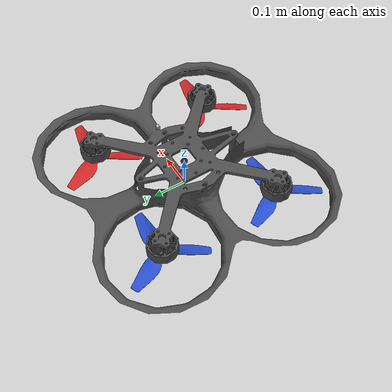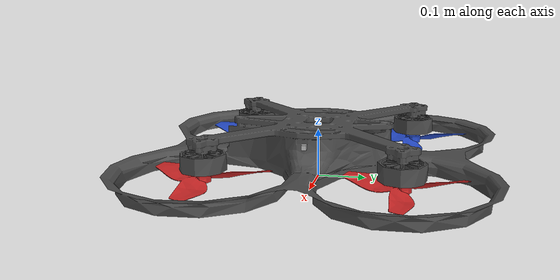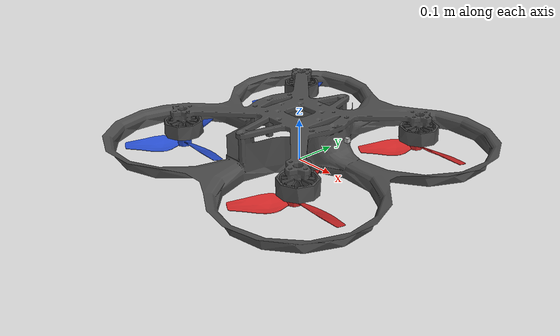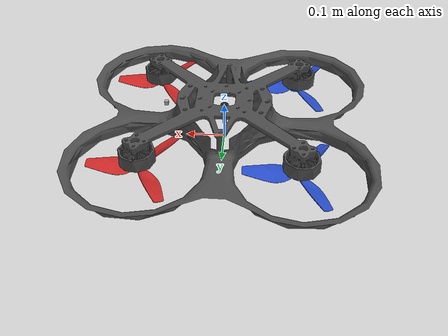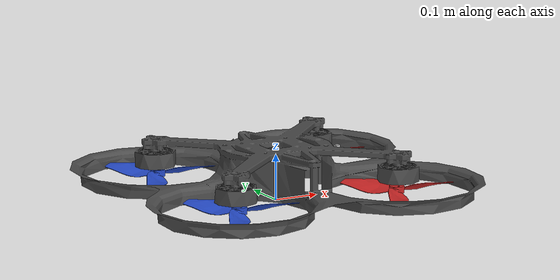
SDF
<?xml version='1.0'?>
<sdf version='1.6'>
  <model name='sunray_150_cam'>
    <include>
      <uri>model://sunray</uri> <!--uri编写的p250飞机-->
    </include>

    <!-- 下视相机link -->
    <link name='Monocular_down_link'>
      <pose>0 0 0.05 0 1.5707963 0</pose> <!--位置-->
      <!--物理属性-->
      <inertial>
        <mass>0.001</mass> <!--质量-->
         <!--惯性标签，定义模型当前link的惯性矩，是一个对称正定3x3矩阵-->
        <inertia>
          <ixx>4.15e-6</ixx>
          <ixy>0</ixy>
          <ixz>0</ixz>
          <iyy>2.407e-6</iyy>
          <iyz>0</iyz>
          <izz>2.407e-6</izz>
        </inertia>
      </inertial>
      <!--可视化标签，定义一些图形界面的视觉效果-->
      <visual name='visual'>
      <!--geometry标签，定义当前link的几何形状-->
        <geometry>
          <box>
            <size>0.01 0.01 0.01</size>
          </box>
        </geometry>
      </visual>
      <!--传感器标签，定义一个名叫camera的传感器，它的类型是camera-->
      <sensor name='camera' type='camera'>
      <!--相机标签，在其中定义一些相机的属性-->
      <!--name可以定义，也可以不定义，它的默认值是_default_-->
        <camera name='__default__'>
          <!-- FOV,120度 -->
          <horizontal_fov>2.0944</horizontal_fov><!--定义水平视野场，此处为120度-->
          <!--image标签，功能是定义以像素为单位的图片大小和图片格式-->
          <image>
            <width>1280</width>
            <height>720</height>
          </image>
          <!--定义远、近剪裁面，不会渲染远、近剪裁平面之外的对象-->
          <clip>
            <near>0.1</near>
            <far>100</far>
          </clip>
           <!--噪音标签，定义噪音模型，它将应用到生成的图片上-->
          <noise>
            <type>gaussian</type>
            <mean>0.0</mean>
            <stddev>0.001</stddev>
          </noise>
          <!--透镜标签，作用是定义相机镜头的投影参数-->
          <lens>
            <type>custom</type><!--镜头映射的类型为custom-->
            <!--定义投影方程r=c1*f*fun(theta/c2+c3)的参数-->
            <custom_function>
              <c1>1.05</c1>
              <c2>4</c2>
              <!--c3为角偏移常数，此处不定义，默认值为0，即无偏移-->
              <f>1</f>
              <fun>tan</fun>
            </custom_function>
            <!--bool变量，默认值为1，即true，图像会以水平视野缩放，如果是false,图像则会根据投影类型参数来缩放-->
            <scale_to_hfov>1</scale_to_hfov>
            <!--这个标签表示180度以外的所有内容都会被隐藏-->
            <cutoff_angle>3.1415</cutoff_angle>
          </lens>
        </camera>

        <!--bool值，定义传感器是否更新，1为true,即传感器会根据update_rate参数定义的频率更新-->
        <always_on>1</always_on>
         <!--更新频率参数，默认值为0-->
        <update_rate>30</update_rate>
        <!--传感器可视化参数，bool变量，1即为true,表示允许传感器在图形界面被观察到-->
        <visualize>1</visualize>

        <!--插件标签，它可以作为world、model、sensor的子元素-->
        <!--插入一个名为camere_plugin的libgazebo_ros_camera.so插件，此插件的作用是关联摄像头-->
        <plugin name='camera_plugin' filename='libgazebo_ros_camera.so'>
             <!--机器人的命名空间为/prometheus/sensor-->
            <robotNamespace>/prometheus/sensor</robotNamespace>
            <alwaysOn>true</alwaysOn>
            <imageTopicName>image_raw</imageTopicName><!--申明摄像头发布的消息话题为image_raw-->
            <cameraInfoTopicName>camera_info</cameraInfoTopicName><!--用于发布相机信息的主题名称为camera_info-->
            <updateRate>30.0</updateRate><!--更新频率为30-->
            <cameraName>monocular_down</cameraName><!--摄像机命名为monocular_down-->
            <frameName>/monocular_down_link</frameName><!--定义数据所在的参考系为/monocular_down_link-->
            <!--相机本身的信息-->
            <CxPrime>640</CxPrime>
            <Cx>640</Cx>
            <Cy>360</Cy>
            <hackBaseline>0</hackBaseline>
            <focalLength>369.502083</focalLength>
            <distortionK1>0.0</distortionK1>
            <distortionK2>0.0</distortionK2>
            <distortionK3>0.0</distortionK3>
            <distortionT1>0.0</distortionT1>
            <distortionT2>0.0</distortionT2>
        </plugin>

      </sensor>
      <self_collide>0</self_collide><!--Bool变量，0为false,即不会Model下的其他link发生碰撞-->
      <kinematic>0</kinematic><!--bool变量，0为false,如果为true，则表示本link仅为运动学link-->
    </link>

    <!-- 下视相机关节 -->
    <!--一个joint连接两个link关于动力学和运动学属性，默认情况下，joint的pose使用子link的参考系-->
    <!--申明一个Monocular_down_joint的joint-->
    <!--joint的类型为fixed,表示刚性连接两个link，自由度为0-->
    <!--joint的全部类型：continuous,revolute,gearbox,revolute2,prismatic,ball,screw,universal,fixed-->
    <joint name="Monocular_down_joint" type="fixed">
      <child>Monocular_down_link</child> <!--子link-->
      <parent>sunray::base_link</parent><!--父link-->
      <!--axis标签，定义与旋转joint的旋转轴相关的参数和prismatic joint的平移轴相关的参数-->
      <axis>
        <xyz>0 0 1</xyz><!--xyz标签定义轴的方向，是单位向量，默认值为0 0 1，参考系一般为joint参考系-->
        <!--定义joint具体的限制，如果是旋转joint那么就是角度限制，如果是prismatic joint那么就是平移的距离限制-->
        <limit>
        <!--因为是fixed joint，所以最低最高均为0-->
          <upper>0</upper>
          <lower>0</lower>
        </limit>
      </axis>
    </joint>

    <!-- 前视相机 -->
    <link name='Monocular_front_link'>
      <pose>0.15 0 0.1 0 0 0</pose>
      <inertial>
        <mass>0.001</mass>
        <inertia>
          <ixx>4.15e-6</ixx>
          <ixy>0</ixy>
          <ixz>0</ixz>
          <iyy>2.407e-6</iyy>
          <iyz>0</iyz>
          <izz>2.407e-6</izz>
        </inertia>
      </inertial>
      <visual name='visual'>
        <geometry>
          <box>
            <size>0.01 0.01 0.01</size>
          </box>
        </geometry>
      </visual>
      <sensor name='camera' type='camera'>
        <camera name='__default__'>
          <!-- FOV,120度 -->
          <horizontal_fov>2.0944</horizontal_fov>
          <image>
            <width>1280</width>
            <height>720</height>
          </image>
          <clip>
            <near>0.1</near>
            <far>100</far>
          </clip>
          <noise>
            <type>gaussian</type>
            <mean>0.0</mean>
            <stddev>0.001</stddev>
          </noise>
          <lens>
            <type>custom</type>
            <custom_function>
              <c1>1.05</c1>
              <c2>4</c2>
              <f>1</f>
              <fun>tan</fun>
            </custom_function>
            <scale_to_hfov>1</scale_to_hfov>
            <cutoff_angle>3.1415</cutoff_angle>
          </lens>
        </camera>
        <always_on>1</always_on>
        <update_rate>30</update_rate>
        <visualize>1</visualize>
        <plugin name='camera_plugin' filename='libgazebo_ros_camera.so'>
            <robotNamespace>/prometheus/sensor</robotNamespace>
            <alwaysOn>true</alwaysOn>
            <imageTopicName>image_raw</imageTopicName>
            <cameraInfoTopicName>camera_info</cameraInfoTopicName>
            <updateRate>30.0</updateRate>
            <cameraName>monocular_front</cameraName>
            <frameName>/monocular_front_link</frameName>
            <CxPrime>640</CxPrime>
            <Cx>640</Cx>
            <Cy>360</Cy>
            <hackBaseline>0</hackBaseline>
            <focalLength>369.502083</focalLength>
            <distortionK1>0.0</distortionK1>
            <distortionK2>0.0</distortionK2>
            <distortionK3>0.0</distortionK3>
            <distortionT1>0.0</distortionT1>
            <distortionT2>0.0</distortionT2>
        </plugin>
      </sensor>
      <self_collide>0</self_collide>
      <kinematic>0</kinematic>
    </link>

    <!-- 前视相机关节 -->
    <!--申明一个Monocular_front_joint的joint-->
    <!--joint类型为fixed-->
    <joint name="Monocular_front_joint" type="fixed">
      <child>Monocular_front_link</child>
      <parent>sunray::base_link</parent>
      <axis>
        <xyz>0 0 1</xyz>
        <limit>
          <upper>0</upper>
          <lower>0</lower>
        </limit>
      </axis>
    </joint>

  </model>
</sdf>

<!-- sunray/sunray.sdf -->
<sdf version='1.6'>
  <model name='sunray'>
    <!-- sunray body -->
    <link name='base_link'>
      <pose>0 0 0 0 0 0</pose>
      <inertial>
        <pose>0 0 0 0 0 0</pose>
        <mass>1.8</mass>
        <inertia>
          <ixx>0.029125</ixx>
          <ixy>0</ixy>
          <ixz>0</ixz>
          <iyy>0.029125</iyy>
          <iyz>0</iyz>
          <izz>0.05225</izz>
        </inertia>
      </inertial>
      <collision name='base_link_inertia_collision'>
        <pose>0 0 0.07 0 0 0</pose>
        <geometry>
          <box>
						<size>0.20 0.20 0.12</size>
          </box>
        </geometry>
        <surface>
          <contact>
            <ode>
              <min_depth>0.001</min_depth>
              <max_vel>0</max_vel>
            </ode>
          </contact>
          <friction>
            <ode/>
          </friction>
        </surface>
      </collision>
      <visual name='base_link_inertia_visual'>
        <pose>0 0 0.12 3.14 0 0</pose>
        <geometry>
          <mesh>
            <scale>0.0035 0.0035 0.0035</scale>
            <uri>model://sunray/meshes/sunray.stl</uri>
          </mesh>
        </geometry>
        <material>
          <script>
            <name>Gazebo/DarkGrey</name>
            <uri>file://media/materials/scripts/gazebo.material</uri>
          </script>
        </material>
      </visual>
      <gravity>1</gravity>
      <velocity_decay/>
      <self_collide>0</self_collide>
    </link>
    <link name='imu_link'>
      <pose>0 0 0 0 0 0</pose>
      <inertial>
        <pose>0 0 0 0 0 0</pose>
        <mass>0.015</mass>
        <inertia>
          <ixx>1e-05</ixx>
          <ixy>0</ixy>
          <ixz>0</ixz>
          <iyy>1e-05</iyy>
          <iyz>0</iyz>
          <izz>1e-05</izz>
        </inertia>
      </inertial>
    </link>
    <joint name='imu_joint' type='revolute'>
      <child>imu_link</child>
      <parent>base_link</parent>
      <axis>
        <xyz>1 0 0</xyz>
        <limit>
          <lower>0</lower>
          <upper>0</upper>
          <effort>0</effort>
          <velocity>0</velocity>
        </limit>
        <dynamics>
          <spring_reference>0</spring_reference>
          <spring_stiffness>0</spring_stiffness>
        </dynamics>
        <use_parent_model_frame>1</use_parent_model_frame>
      </axis>
    </joint>
    <link name='rotor_0'>
			<pose>0.188132 -0.188132 0.035 0 0 0</pose>
      <inertial>
        <pose>0 0 0 0 0 0</pose>
        <mass>0.005</mass>
        <inertia>
          <ixx>9.75e-07</ixx>
          <ixy>0</ixy>
          <ixz>0</ixz>
          <iyy>0.000273104</iyy>
          <iyz>0</iyz>
          <izz>0.000274004</izz>
        </inertia>
      </inertial>
      <collision name='rotor_0_collision'>
        <pose>0 0 0 0 0 0</pose>
        <geometry>
          <cylinder>
            <length>0.005</length>
            <radius>0.090</radius>
          </cylinder>
        </geometry>
        <surface>
          <contact>
            <ode/>
          </contact>
          <friction>
            <ode/>
          </friction>
        </surface>
      </collision>
      <visual name='rotor_0_visual'>
        <pose>0 0 0 0 0 0</pose>
        <geometry>
          <mesh>
            <scale>0.003 0.003 0.003</scale>
            <uri>model://sunray/meshes/sunray_cw.stl</uri>
          </mesh>
        </geometry>
        <material>
          <script>
            <name>Gazebo/Red</name>
            <uri>file://media/materials/scripts/gazebo.material</uri>
          </script>
        </material>
      </visual>
      <gravity>1</gravity>
      <velocity_decay/>
      <self_collide>0</self_collide>
    </link>
    <joint name='rotor_0_joint' type='revolute'>
      <child>rotor_0</child>
      <parent>base_link</parent>
      <axis>
        <xyz>0 0 1</xyz>
        <limit>
          <lower>-1e+16</lower>
          <upper>1e+16</upper>
        </limit>
        <dynamics>
          <spring_reference>0</spring_reference>
          <spring_stiffness>0</spring_stiffness>
        </dynamics>
        <use_parent_model_frame>1</use_parent_model_frame>
      </axis>
    </joint>
    <link name='rotor_1'>
			<pose>-0.188132 0.188132 0.035 0 0 0</pose>
      <inertial>
        <pose>0 0 0 0 0 0</pose>
        <mass>0.005</mass>
        <inertia>
          <ixx>9.75e-07</ixx>
          <ixy>0</ixy>
          <ixz>0</ixz>
          <iyy>0.000273104</iyy>
          <iyz>0</iyz>
          <izz>0.000274004</izz>
        </inertia>
      </inertial>
      <collision name='rotor_1_collision'>
        <pose>0 0 0 0 0 0</pose>
        <geometry>
          <cylinder>
            <length>0.005</length>
            <radius>0.090</radius>
          </cylinder>
        </geometry>
        <surface>
          <contact>
            <ode/>
          </contact>
          <friction>
            <ode/>
          </friction>
        </surface>
      </collision>
      <visual name='rotor_1_visual'>
        <pose>0 0 0 0 0 0</pose>
        <geometry>
          <mesh>
            <scale>0.003 0.003 0.003</scale>
            <uri>model://sunray/meshes/sunray_cw.stl</uri>
          </mesh>
        </geometry>
        <material>
          <script>
            <name>Gazebo/Blue</name>
            <uri>file://media/materials/scripts/gazebo.material</uri>
          </script>
        </material>
      </visual>
      <gravity>1</gravity>
      <velocity_decay/>
      <self_collide>0</self_collide>
    </link>
    <joint name='rotor_1_joint' type='revolute'>
      <child>rotor_1</child>
      <parent>base_link</parent>
      <axis>
        <xyz>0 0 1</xyz>
        <limit>
          <lower>-1e+16</lower>
          <upper>1e+16</upper>
        </limit>
        <dynamics>
          <spring_reference>0</spring_reference>
          <spring_stiffness>0</spring_stiffness>
        </dynamics>
        <use_parent_model_frame>1</use_parent_model_frame>
      </axis>
    </joint>
    <link name='rotor_2'>
			<pose>0.188132 0.188132 0.035 0 0 0</pose>
      <inertial>
        <pose>0 0 0 0 0 0</pose>
        <mass>0.005</mass>
        <inertia>
          <ixx>9.75e-07</ixx>
          <ixy>0</ixy>
          <ixz>0</ixz>
          <iyy>0.000273104</iyy>
          <iyz>0</iyz>
          <izz>0.000274004</izz>
        </inertia>
      </inertial>
      <collision name='rotor_2_collision'>
        <pose>0 0 0 0 0 0</pose>
        <geometry>
          <cylinder>
            <length>0.005</length>
            <radius>0.090</radius>
          </cylinder>
        </geometry>
        <surface>
          <contact>
            <ode/>
          </contact>
          <friction>
            <ode/>
          </friction>
        </surface>
      </collision>
      <visual name='rotor_2_visual'>
        <pose>0 0 0 0 0 0</pose>
        <geometry>
          <mesh>
            <scale>0.003 0.003 0.003</scale>
            <uri>model://sunray/meshes/sunray_cw.stl</uri>
          </mesh>
        </geometry>
        <material>
          <script>
            <name>Gazebo/Red</name>
            <uri>file://media/materials/scripts/gazebo.material</uri>
          </script>
        </material>
      </visual>
      <gravity>1</gravity>
      <velocity_decay/>
      <self_collide>0</self_collide>
    </link>
    <joint name='rotor_2_joint' type='revolute'>
      <child>rotor_2</child>
      <parent>base_link</parent>
      <axis>
        <xyz>0 0 1</xyz>
        <limit>
          <lower>-1e+16</lower>
          <upper>1e+16</upper>
        </limit>
        <dynamics>
          <spring_reference>0</spring_reference>
          <spring_stiffness>0</spring_stiffness>
        </dynamics>
        <use_parent_model_frame>1</use_parent_model_frame>
      </axis>
    </joint>
    <link name='rotor_3'>
			<pose>-0.188132 -0.188132 0.035 0 0 0</pose>
      <inertial>
        <pose>0 0 0 0 0 0</pose>
        <mass>0.005</mass>
        <inertia>
          <ixx>9.75e-07</ixx>
          <ixy>0</ixy>
          <ixz>0</ixz>
          <iyy>0.000273104</iyy>
          <iyz>0</iyz>
          <izz>0.000274004</izz>
        </inertia>
      </inertial>
      <collision name='rotor_3_collision'>
        <pose>0 0 0 0 0 0</pose>
        <geometry>
          <cylinder>
            <length>0.005</length>
            <radius>0.090</radius>
          </cylinder>
        </geometry>
        <surface>
          <contact>
            <ode/>
          </contact>
          <friction>
            <ode/>
          </friction>
        </surface>
      </collision>
      <visual name='rotor_3_visual'>
        <pose>0 0 0 0 0 0</pose>
        <geometry>
          <mesh>
            <scale>0.003 0.003 0.003</scale>
            <uri>model://sunray/meshes/sunray_cw.stl</uri>
          </mesh>
        </geometry>
        <material>
          <script>
            <name>Gazebo/Blue</name>
            <uri>file://media/materials/scripts/gazebo.material</uri>
          </script>
        </material>
      </visual>
      <gravity>1</gravity>
      <velocity_decay/>
      <self_collide>0</self_collide>
    </link>
    <joint name='rotor_3_joint' type='revolute'>
      <child>rotor_3</child>
      <parent>base_link</parent>
      <axis>
        <xyz>0 0 1</xyz>
        <limit>
          <lower>-1e+16</lower>
          <upper>1e+16</upper>
        </limit>
        <dynamics>
          <spring_reference>0</spring_reference>
          <spring_stiffness>0</spring_stiffness>
        </dynamics>
        <use_parent_model_frame>1</use_parent_model_frame>
      </axis>
    </joint>
    <include>
      <uri>model://gps</uri>
      <pose>0.0 0 0.1 0 0 0</pose>
      <name>gps</name>
    </include>
    <joint name='gps_joint' type='fixed'>
      <child>gps::link</child>
      <parent>base_link</parent>
    </joint>
    <plugin name='rosbag' filename='libgazebo_multirotor_base_plugin.so'>
      <robotNamespace></robotNamespace>
      <linkName>base_link</linkName>
      <rotorVelocitySlowdownSim>10</rotorVelocitySlowdownSim>
    </plugin>
    <plugin name='front_right_motor_model' filename='libgazebo_motor_model.so'>
      <robotNamespace></robotNamespace>
      <jointName>rotor_0_joint</jointName>
      <linkName>rotor_0</linkName>
      <turningDirection>ccw</turningDirection>
      <timeConstantUp>0.0125</timeConstantUp>
      <timeConstantDown>0.025</timeConstantDown>
      <maxRotVelocity>1500</maxRotVelocity>
      <motorConstant>8.54858e-06</motorConstant>
      <momentConstant>0.06</momentConstant>
      <commandSubTopic>/gazebo/command/motor_speed</commandSubTopic>
      <motorNumber>0</motorNumber>
      <rotorDragCoefficient>0.000806428</rotorDragCoefficient>
      <rollingMomentCoefficient>1e-06</rollingMomentCoefficient>
      <motorSpeedPubTopic>/motor_speed/0</motorSpeedPubTopic>
      <rotorVelocitySlowdownSim>10</rotorVelocitySlowdownSim>
    </plugin>
    <plugin name='back_left_motor_model' filename='libgazebo_motor_model.so'>
      <robotNamespace></robotNamespace>
      <jointName>rotor_1_joint</jointName>
      <linkName>rotor_1</linkName>
      <turningDirection>ccw</turningDirection>
      <timeConstantUp>0.0125</timeConstantUp>
      <timeConstantDown>0.025</timeConstantDown>
      <maxRotVelocity>1500</maxRotVelocity>
      <motorConstant>8.54858e-06</motorConstant>
      <momentConstant>0.06</momentConstant>
      <commandSubTopic>/gazebo/command/motor_speed</commandSubTopic>
      <motorNumber>1</motorNumber>
      <rotorDragCoefficient>0.000806428</rotorDragCoefficient>
      <rollingMomentCoefficient>1e-06</rollingMomentCoefficient>
      <motorSpeedPubTopic>/motor_speed/1</motorSpeedPubTopic>
      <rotorVelocitySlowdownSim>10</rotorVelocitySlowdownSim>
    </plugin>
    <plugin name='front_left_motor_model' filename='libgazebo_motor_model.so'>
      <robotNamespace></robotNamespace>
      <jointName>rotor_2_joint</jointName>
      <linkName>rotor_2</linkName>
      <turningDirection>cw</turningDirection>
      <timeConstantUp>0.0125</timeConstantUp>
      <timeConstantDown>0.025</timeConstantDown>
      <maxRotVelocity>1500</maxRotVelocity>
      <motorConstant>8.54858e-06</motorConstant>
      <momentConstant>0.06</momentConstant>
      <commandSubTopic>/gazebo/command/motor_speed</commandSubTopic>
      <motorNumber>2</motorNumber>
      <rotorDragCoefficient>0.000806428</rotorDragCoefficient>
      <rollingMomentCoefficient>1e-06</rollingMomentCoefficient>
      <motorSpeedPubTopic>/motor_speed/2</motorSpeedPubTopic>
      <rotorVelocitySlowdownSim>10</rotorVelocitySlowdownSim>
    </plugin>
    <plugin name='back_right_motor_model' filename='libgazebo_motor_model.so'>
      <robotNamespace></robotNamespace>
      <jointName>rotor_3_joint</jointName>
      <linkName>rotor_3</linkName>
      <turningDirection>cw</turningDirection>
      <timeConstantUp>0.0125</timeConstantUp>
      <timeConstantDown>0.025</timeConstantDown>
      <maxRotVelocity>1500</maxRotVelocity>
      <motorConstant>8.54858e-06</motorConstant>
      <momentConstant>0.06</momentConstant>
      <commandSubTopic>/gazebo/command/motor_speed</commandSubTopic>
      <motorNumber>3</motorNumber>
      <rotorDragCoefficient>0.000806428</rotorDragCoefficient>
      <rollingMomentCoefficient>1e-06</rollingMomentCoefficient>
      <motorSpeedPubTopic>/motor_speed/3</motorSpeedPubTopic>
      <rotorVelocitySlowdownSim>10</rotorVelocitySlowdownSim>
    </plugin>
    <plugin name='groundtruth_plugin' filename='libgazebo_groundtruth_plugin.so'>
      <robotNamespace/>
    </plugin>
    <plugin name='magnetometer_plugin' filename='libgazebo_magnetometer_plugin.so'>
      <robotNamespace/>
      <pubRate>100</pubRate>
      <noiseDensity>0.0004</noiseDensity>
      <randomWalk>6.4e-06</randomWalk>
      <biasCorrelationTime>600</biasCorrelationTime>
      <magTopic>/mag</magTopic>
    </plugin>
    <plugin name='barometer_plugin' filename='libgazebo_barometer_plugin.so'>
      <robotNamespace/>
      <pubRate>50</pubRate>
      <baroTopic>/baro</baroTopic>
    </plugin>
    <plugin name='mavlink_interface' filename='libgazebo_mavlink_interface.so'>
      <robotNamespace/>
      <imuSubTopic>/imu</imuSubTopic>
      <gpsSubTopic>/gps</gpsSubTopic>
      <magSubTopic>/mag</magSubTopic>
      <baroSubTopic>/baro</baroSubTopic>
      <mavlink_addr>INADDR_ANY</mavlink_addr>
      <mavlink_tcp_port>4560</mavlink_tcp_port>
      <serialEnabled>false</serialEnabled>
      <serialDevice>/dev/ttyACM0</serialDevice>
      <baudRate>921600</baudRate>
      <qgc_addr>INADDR_ANY</qgc_addr>
      <qgc_udp_port>14550</qgc_udp_port>
      <hil_mode>false</hil_mode>
      <hil_state_level>false</hil_state_level>
      <enable_lockstep>true</enable_lockstep>
      <use_tcp>true</use_tcp>
      <motorSpeedCommandPubTopic>/gazebo/command/motor_speed</motorSpeedCommandPubTopic>
      <control_channels>
        <channel name='rotor1'>
          <input_index>0</input_index>
          <input_offset>0</input_offset>
          <input_scaling>1200</input_scaling>
          <zero_position_disarmed>0</zero_position_disarmed>
          <zero_position_armed>100</zero_position_armed>
          <joint_control_type>velocity</joint_control_type>
        </channel>
        <channel name='rotor2'>
          <input_index>1</input_index>
          <input_offset>0</input_offset>
          <input_scaling>1200</input_scaling>
          <zero_position_disarmed>0</zero_position_disarmed>
          <zero_position_armed>100</zero_position_armed>
          <joint_control_type>velocity</joint_control_type>
        </channel>
        <channel name='rotor3'>
          <input_index>2</input_index>
          <input_offset>0</input_offset>
          <input_scaling>1200</input_scaling>
          <zero_position_disarmed>0</zero_position_disarmed>
          <zero_position_armed>100</zero_position_armed>
          <joint_control_type>velocity</joint_control_type>
        </channel>
        <channel name='rotor4'>
          <input_index>3</input_index>
          <input_offset>0</input_offset>
          <input_scaling>1200</input_scaling>
          <zero_position_disarmed>0</zero_position_disarmed>
          <zero_position_armed>100</zero_position_armed>
          <joint_control_type>velocity</joint_control_type>
        </channel>
      </control_channels>
    </plugin>
    <static>0</static>
    <plugin name='gazebo_imu_plugin' filename='libgazebo_imu_plugin.so'>
      <robotNamespace></robotNamespace>
      <linkName>imu_link</linkName>
      <imuTopic>/imu</imuTopic>
      <gyroscopeNoiseDensity>0.0003394</gyroscopeNoiseDensity>
      <gyroscopeRandomWalk>3.8785e-05</gyroscopeRandomWalk>
      <gyroscopeBiasCorrelationTime>1000.0</gyroscopeBiasCorrelationTime>
      <gyroscopeTurnOnBiasSigma>0.0087</gyroscopeTurnOnBiasSigma>
      <accelerometerNoiseDensity>0.004</accelerometerNoiseDensity>
      <accelerometerRandomWalk>0.006</accelerometerRandomWalk>
      <accelerometerBiasCorrelationTime>300.0</accelerometerBiasCorrelationTime>
      <accelerometerTurnOnBiasSigma>0.196</accelerometerTurnOnBiasSigma>
    </plugin>

    <plugin name="p3d_base_controller" filename="libgazebo_ros_p3d.so">
      <alwaysOn>true</alwaysOn>
      <updateRate>50.0</updateRate>
      <bodyName>base_link</bodyName>
      <topicName>sunray/gazebo_pose</topicName>
      <gaussianNoise>0.00</gaussianNoise>
      <frameName>world</frameName>
      <xyzOffsets>0 0 0</xyzOffsets>
      <rpyOffsets>0 0 0</rpyOffsets>
    </plugin>

  </model>
</sdf>

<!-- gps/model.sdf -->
<sdf version="1.6">
  <model name="gps">
    <link name="link">
      <pose>0 0 0 0 0 0</pose>
      <inertial>
        <pose>0 0 0 0 0 0</pose>
        <mass>0.015</mass>
        <inertia>
          <ixx>1e-05</ixx>
          <ixy>0</ixy>
          <ixz>0</ixz>
          <iyy>1e-05</iyy>
          <iyz>0</iyz>
          <izz>1e-05</izz>
        </inertia>
      </inertial>
      <visual name="visual">
        <geometry>
          <cylinder>
            <radius>0.01</radius>
            <length>0.002</length>
          </cylinder>
        </geometry>
        <material>
          <script>
            <name>Gazebo/Black</name>
            <uri>file://usr/share/gz/gz-sim8/media/gazebo.material</uri>
          </script>
        </material>
      </visual>
      <sensor name="gps" type="gps">
        <pose>0 0 0 0 0 0</pose>
        <update_rate>5.0</update_rate>
        <always_on>true</always_on>
        <visualize>false</visualize>
        <!-- GpsSensor noise currently not used -->
        <plugin name="gps_plugin" filename="libgazebo_gps_plugin.so">
          <robotNamespace></robotNamespace>
          <gpsNoise>true</gpsNoise>
          <gpsXYRandomWalk>2.0</gpsXYRandomWalk>
          <gpsZRandomWalk>4.0</gpsZRandomWalk>
          <gpsXYNoiseDensity>2.0e-4</gpsXYNoiseDensity>
          <gpsZNoiseDensity>4.0e-4</gpsZNoiseDensity>
          <gpsVXYNoiseDensity>0.2</gpsVXYNoiseDensity>
          <gpsVZNoiseDensity>0.4</gpsVZNoiseDensity>
        </plugin>
      </sensor>
    </link>
  </model>
</sdf>
